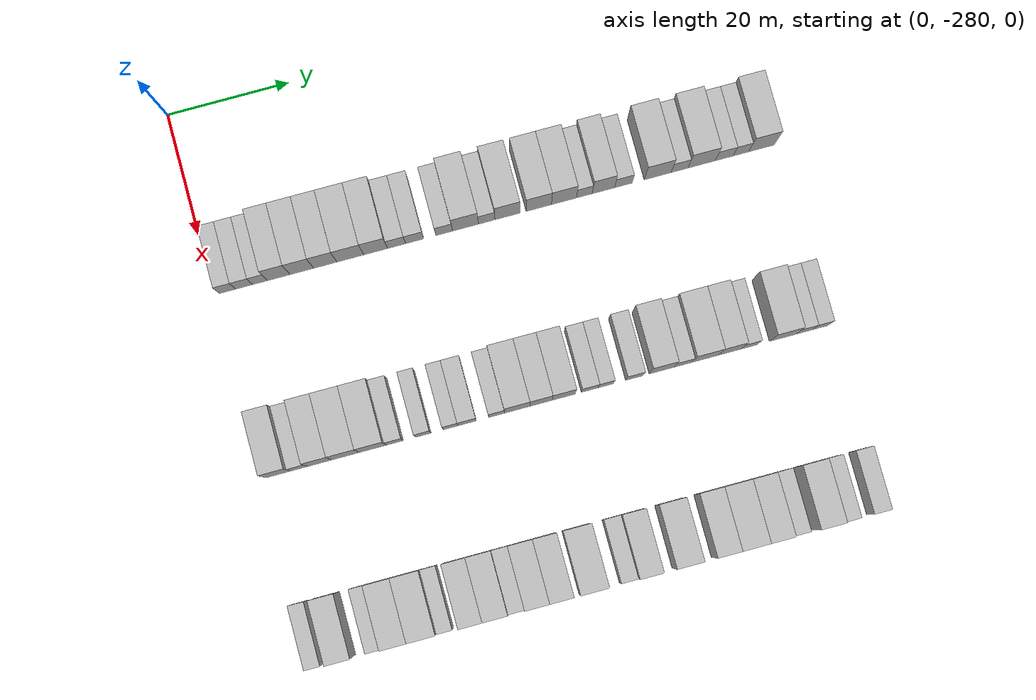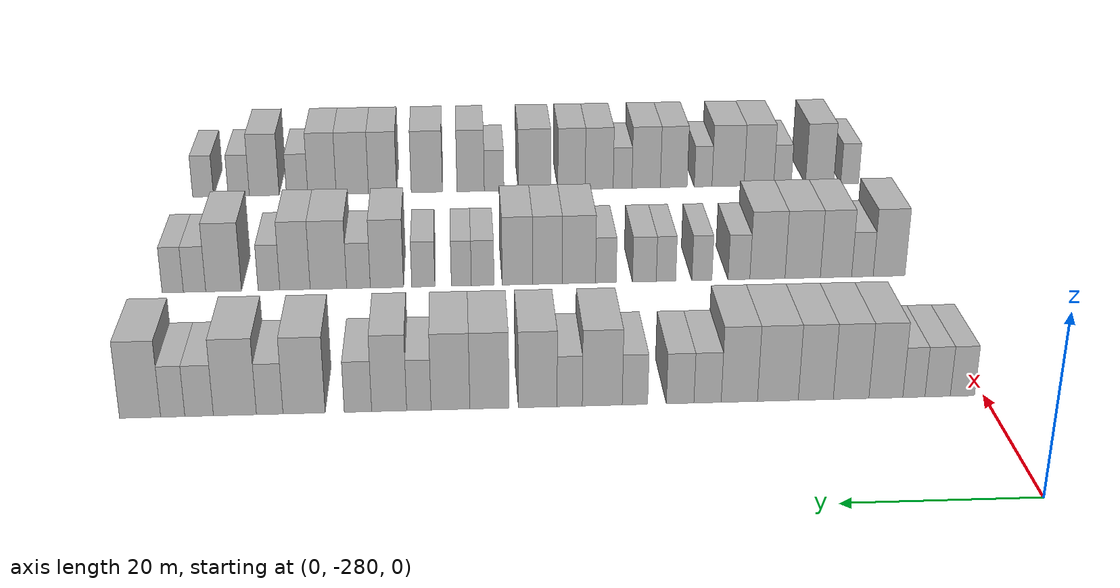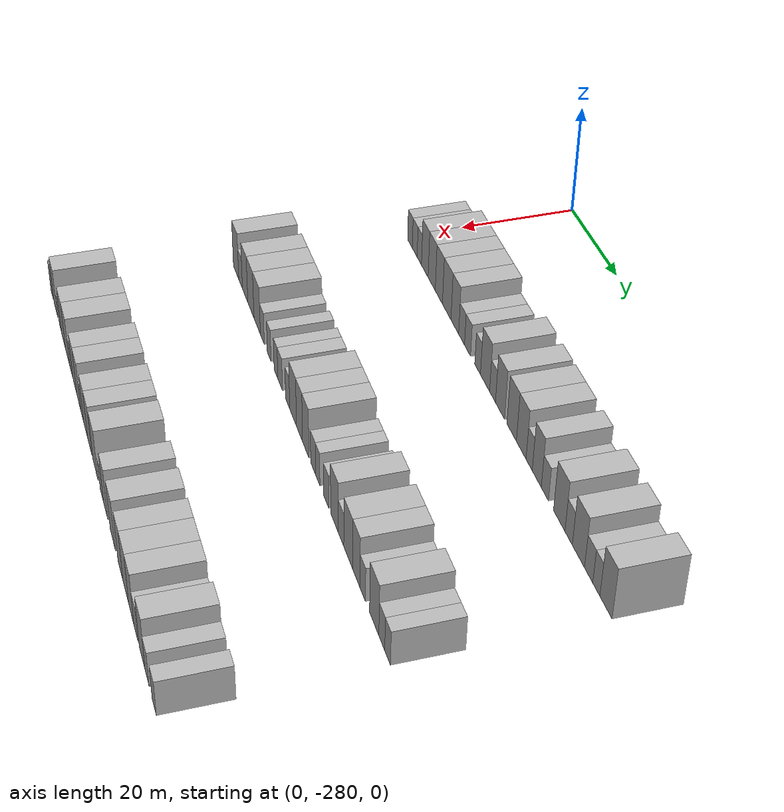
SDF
<sdf version="1.6">
 <world name="default">
  <model name="building_1">
   <static>1</static>
   <pose>25.0000 -277.6752 0 0.000000 0.000000 0.000000</pose>
   <link name="link">
    <pose>0 0 3.00 0 0 0</pose>
    <collision name="collision"><geometry><box><size>10.0000 2.6495 6.0000</size></box></geometry></collision>
    <visual name="visual">
     <cast_shadows>0</cast_shadows>
     <geometry><box><size>10.0000 2.6495 6.0000</size></box></geometry>
     <material>
      <script>
       <uri>model://HANNAS_wall/materials/scripts</uri>
       <uri>model://HANNAS_wall/materials/textures</uri>
       <name>vrc/HANNAS_wall</name>
      </script>
     </material>
    </visual>
   </link>
  </model>
  <model name="building_2">
   <static>1</static>
   <pose>25.0000 -274.9795 0 0.000000 0.000000 0.000000</pose>
   <link name="link">
    <pose>0 0 3.00 0 0 0</pose>
    <collision name="collision"><geometry><box><size>10.0000 2.7420 6.0000</size></box></geometry></collision>
    <visual name="visual">
     <cast_shadows>0</cast_shadows>
     <geometry><box><size>10.0000 2.7420 6.0000</size></box></geometry>
     <material>
      <script>
       <uri>model://HANNAS_wall/materials/scripts</uri>
       <uri>model://HANNAS_wall/materials/textures</uri>
       <name>vrc/HANNAS_wall</name>
      </script>
     </material>
    </visual>
   </link>
  </model>
  <model name="building_3">
   <static>1</static>
   <pose>25.0000 -272.4048 0 0.000000 0.000000 0.000000</pose>
   <link name="link">
    <pose>0 0 3.00 0 0 0</pose>
    <collision name="collision"><geometry><box><size>10.0000 2.4073 6.0000</size></box></geometry></collision>
    <visual name="visual">
     <cast_shadows>0</cast_shadows>
     <geometry><box><size>10.0000 2.4073 6.0000</size></box></geometry>
     <material>
      <script>
       <uri>model://HANNAS_wall/materials/scripts</uri>
       <uri>model://HANNAS_wall/materials/textures</uri>
       <name>vrc/HANNAS_wall</name>
      </script>
     </material>
    </visual>
   </link>
  </model>
  <model name="building_4">
   <static>1</static>
   <pose>25.0000 -269.3642 0 0.000000 0.000000 0.000000</pose>
   <link name="link">
    <pose>0 0 4.50 0 0 0</pose>
    <collision name="collision"><geometry><box><size>10.0000 3.6740 9.0000</size></box></geometry></collision>
    <visual name="visual">
     <cast_shadows>0</cast_shadows>
     <geometry><box><size>10.0000 3.6740 9.0000</size></box></geometry>
     <material>
      <script>
       <uri>model://HANNAS_wall/materials/scripts</uri>
       <uri>model://HANNAS_wall/materials/textures</uri>
       <name>vrc/HANNAS_wall</name>
      </script>
     </material>
    </visual>
   </link>
  </model>
  <model name="building_5">
   <static>1</static>
   <pose>25.0000 -265.6011 0 0.000000 0.000000 0.000000</pose>
   <link name="link">
    <pose>0 0 4.50 0 0 0</pose>
    <collision name="collision"><geometry><box><size>10.0000 3.8522 9.0000</size></box></geometry></collision>
    <visual name="visual">
     <cast_shadows>0</cast_shadows>
     <geometry><box><size>10.0000 3.8522 9.0000</size></box></geometry>
     <material>
      <script>
       <uri>model://HANNAS_wall/materials/scripts</uri>
       <uri>model://HANNAS_wall/materials/textures</uri>
       <name>vrc/HANNAS_wall</name>
      </script>
     </material>
    </visual>
   </link>
  </model>
  <model name="building_6">
   <static>1</static>
   <pose>25.0000 -261.7852 0 0.000000 0.000000 0.000000</pose>
   <link name="link">
    <pose>0 0 4.50 0 0 0</pose>
    <collision name="collision"><geometry><box><size>10.0000 3.7798 9.0000</size></box></geometry></collision>
    <visual name="visual">
     <cast_shadows>0</cast_shadows>
     <geometry><box><size>10.0000 3.7798 9.0000</size></box></geometry>
     <material>
      <script>
       <uri>model://HANNAS_wall/materials/scripts</uri>
       <uri>model://HANNAS_wall/materials/textures</uri>
       <name>vrc/HANNAS_wall</name>
      </script>
     </material>
    </visual>
   </link>
  </model>
  <model name="building_7">
   <static>1</static>
   <pose>25.0000 -257.6972 0 0.000000 0.000000 0.000000</pose>
   <link name="link">
    <pose>0 0 4.50 0 0 0</pose>
    <collision name="collision"><geometry><box><size>10.0000 4.3960 9.0000</size></box></geometry></collision>
    <visual name="visual">
     <cast_shadows>0</cast_shadows>
     <geometry><box><size>10.0000 4.3960 9.0000</size></box></geometry>
     <material>
      <script>
       <uri>model://HANNAS_wall/materials/scripts</uri>
       <uri>model://HANNAS_wall/materials/textures</uri>
       <name>vrc/HANNAS_wall</name>
      </script>
     </material>
    </visual>
   </link>
  </model>
  <model name="building_8">
   <static>1</static>
   <pose>25.0000 -253.5503 0 0.000000 0.000000 0.000000</pose>
   <link name="link">
    <pose>0 0 4.50 0 0 0</pose>
    <collision name="collision"><geometry><box><size>10.0000 3.8979 9.0000</size></box></geometry></collision>
    <visual name="visual">
     <cast_shadows>0</cast_shadows>
     <geometry><box><size>10.0000 3.8979 9.0000</size></box></geometry>
     <material>
      <script>
       <uri>model://HANNAS_wall/materials/scripts</uri>
       <uri>model://HANNAS_wall/materials/textures</uri>
       <name>vrc/HANNAS_wall</name>
      </script>
     </material>
    </visual>
   </link>
  </model>
  <model name="building_9">
   <static>1</static>
   <pose>25.0000 -250.1390 0 0.000000 0.000000 0.000000</pose>
   <link name="link">
    <pose>0 0 3.00 0 0 0</pose>
    <collision name="collision"><geometry><box><size>10.0000 2.9247 6.0000</size></box></geometry></collision>
    <visual name="visual">
     <cast_shadows>0</cast_shadows>
     <geometry><box><size>10.0000 2.9247 6.0000</size></box></geometry>
     <material>
      <script>
       <uri>model://HANNAS_wall/materials/scripts</uri>
       <uri>model://HANNAS_wall/materials/textures</uri>
       <name>vrc/HANNAS_wall</name>
      </script>
     </material>
    </visual>
   </link>
  </model>
  <model name="building_10">
   <static>1</static>
   <pose>25.0000 -247.2018 0 0.000000 0.000000 0.000000</pose>
   <link name="link">
    <pose>0 0 3.00 0 0 0</pose>
    <collision name="collision"><geometry><box><size>10.0000 2.9497 6.0000</size></box></geometry></collision>
    <visual name="visual">
     <cast_shadows>0</cast_shadows>
     <geometry><box><size>10.0000 2.9497 6.0000</size></box></geometry>
     <material>
      <script>
       <uri>model://HANNAS_wall/materials/scripts</uri>
       <uri>model://HANNAS_wall/materials/textures</uri>
       <name>vrc/HANNAS_wall</name>
      </script>
     </material>
    </visual>
   </link>
  </model>
  <model name="building_11">
   <static>1</static>
   <pose>25.0000 -242.3681 0 0.000000 0.000000 0.000000</pose>
   <link name="link">
    <pose>0 0 3.00 0 0 0</pose>
    <collision name="collision"><geometry><box><size>10.0000 2.7177 6.0000</size></box></geometry></collision>
    <visual name="visual">
     <cast_shadows>0</cast_shadows>
     <geometry><box><size>10.0000 2.7177 6.0000</size></box></geometry>
     <material>
      <script>
       <uri>model://HANNAS_wall/materials/scripts</uri>
       <uri>model://HANNAS_wall/materials/textures</uri>
       <name>vrc/HANNAS_wall</name>
      </script>
     </material>
    </visual>
   </link>
  </model>
  <model name="building_12">
   <static>1</static>
   <pose>25.0000 -238.8807 0 0.000000 0.000000 0.000000</pose>
   <link name="link">
    <pose>0 0 4.50 0 0 0</pose>
    <collision name="collision"><geometry><box><size>10.0000 4.2572 9.0000</size></box></geometry></collision>
    <visual name="visual">
     <cast_shadows>0</cast_shadows>
     <geometry><box><size>10.0000 4.2572 9.0000</size></box></geometry>
     <material>
      <script>
       <uri>model://HANNAS_wall/materials/scripts</uri>
       <uri>model://HANNAS_wall/materials/textures</uri>
       <name>vrc/HANNAS_wall</name>
      </script>
     </material>
    </visual>
   </link>
  </model>
  <model name="building_13">
   <static>1</static>
   <pose>25.0000 -235.4139 0 0.000000 0.000000 0.000000</pose>
   <link name="link">
    <pose>0 0 3.00 0 0 0</pose>
    <collision name="collision"><geometry><box><size>10.0000 2.6763 6.0000</size></box></geometry></collision>
    <visual name="visual">
     <cast_shadows>0</cast_shadows>
     <geometry><box><size>10.0000 2.6763 6.0000</size></box></geometry>
     <material>
      <script>
       <uri>model://HANNAS_wall/materials/scripts</uri>
       <uri>model://HANNAS_wall/materials/textures</uri>
       <name>vrc/HANNAS_wall</name>
      </script>
     </material>
    </visual>
   </link>
  </model>
  <model name="building_14">
   <static>1</static>
   <pose>25.0000 -232.0247 0 0.000000 0.000000 0.000000</pose>
   <link name="link">
    <pose>0 0 4.50 0 0 0</pose>
    <collision name="collision"><geometry><box><size>10.0000 4.1022 9.0000</size></box></geometry></collision>
    <visual name="visual">
     <cast_shadows>0</cast_shadows>
     <geometry><box><size>10.0000 4.1022 9.0000</size></box></geometry>
     <material>
      <script>
       <uri>model://HANNAS_wall/materials/scripts</uri>
       <uri>model://HANNAS_wall/materials/textures</uri>
       <name>vrc/HANNAS_wall</name>
      </script>
     </material>
    </visual>
   </link>
  </model>
  <model name="building_15">
   <static>1</static>
   <pose>25.0000 -226.8983 0 0.000000 0.000000 0.000000</pose>
   <link name="link">
    <pose>0 0 4.50 0 0 0</pose>
    <collision name="collision"><geometry><box><size>10.0000 4.1507 9.0000</size></box></geometry></collision>
    <visual name="visual">
     <cast_shadows>0</cast_shadows>
     <geometry><box><size>10.0000 4.1507 9.0000</size></box></geometry>
     <material>
      <script>
       <uri>model://HANNAS_wall/materials/scripts</uri>
       <uri>model://HANNAS_wall/materials/textures</uri>
       <name>vrc/HANNAS_wall</name>
      </script>
     </material>
    </visual>
   </link>
  </model>
  <model name="building_16">
   <static>1</static>
   <pose>25.0000 -222.7742 0 0.000000 0.000000 0.000000</pose>
   <link name="link">
    <pose>0 0 4.50 0 0 0</pose>
    <collision name="collision"><geometry><box><size>10.0000 4.0976 9.0000</size></box></geometry></collision>
    <visual name="visual">
     <cast_shadows>0</cast_shadows>
     <geometry><box><size>10.0000 4.0976 9.0000</size></box></geometry>
     <material>
      <script>
       <uri>model://HANNAS_wall/materials/scripts</uri>
       <uri>model://HANNAS_wall/materials/textures</uri>
       <name>vrc/HANNAS_wall</name>
      </script>
     </material>
    </visual>
   </link>
  </model>
  <model name="building_17">
   <static>1</static>
   <pose>25.0000 -219.4389 0 0.000000 0.000000 0.000000</pose>
   <link name="link">
    <pose>0 0 3.00 0 0 0</pose>
    <collision name="collision"><geometry><box><size>10.0000 2.5729 6.0000</size></box></geometry></collision>
    <visual name="visual">
     <cast_shadows>0</cast_shadows>
     <geometry><box><size>10.0000 2.5729 6.0000</size></box></geometry>
     <material>
      <script>
       <uri>model://HANNAS_wall/materials/scripts</uri>
       <uri>model://HANNAS_wall/materials/textures</uri>
       <name>vrc/HANNAS_wall</name>
      </script>
     </material>
    </visual>
   </link>
  </model>
  <model name="building_18">
   <static>1</static>
   <pose>25.0000 -216.3109 0 0.000000 0.000000 0.000000</pose>
   <link name="link">
    <pose>0 0 4.50 0 0 0</pose>
    <collision name="collision"><geometry><box><size>10.0000 3.6831 9.0000</size></box></geometry></collision>
    <visual name="visual">
     <cast_shadows>0</cast_shadows>
     <geometry><box><size>10.0000 3.6831 9.0000</size></box></geometry>
     <material>
      <script>
       <uri>model://HANNAS_wall/materials/scripts</uri>
       <uri>model://HANNAS_wall/materials/textures</uri>
       <name>vrc/HANNAS_wall</name>
      </script>
     </material>
    </visual>
   </link>
  </model>
  <model name="building_19">
   <static>1</static>
   <pose>25.0000 -213.0263 0 0.000000 0.000000 0.000000</pose>
   <link name="link">
    <pose>0 0 3.00 0 0 0</pose>
    <collision name="collision"><geometry><box><size>10.0000 2.8860 6.0000</size></box></geometry></collision>
    <visual name="visual">
     <cast_shadows>0</cast_shadows>
     <geometry><box><size>10.0000 2.8860 6.0000</size></box></geometry>
     <material>
      <script>
       <uri>model://HANNAS_wall/materials/scripts</uri>
       <uri>model://HANNAS_wall/materials/textures</uri>
       <name>vrc/HANNAS_wall</name>
      </script>
     </material>
    </visual>
   </link>
  </model>
  <model name="building_20">
   <static>1</static>
   <pose>25.0000 -207.3724 0 0.000000 0.000000 0.000000</pose>
   <link name="link">
    <pose>0 0 4.50 0 0 0</pose>
    <collision name="collision"><geometry><box><size>10.0000 4.4217 9.0000</size></box></geometry></collision>
    <visual name="visual">
     <cast_shadows>0</cast_shadows>
     <geometry><box><size>10.0000 4.4217 9.0000</size></box></geometry>
     <material>
      <script>
       <uri>model://HANNAS_wall/materials/scripts</uri>
       <uri>model://HANNAS_wall/materials/textures</uri>
       <name>vrc/HANNAS_wall</name>
      </script>
     </material>
    </visual>
   </link>
  </model>
  <model name="building_21">
   <static>1</static>
   <pose>25.0000 -203.7728 0 0.000000 0.000000 0.000000</pose>
   <link name="link">
    <pose>0 0 3.00 0 0 0</pose>
    <collision name="collision"><geometry><box><size>10.0000 2.7775 6.0000</size></box></geometry></collision>
    <visual name="visual">
     <cast_shadows>0</cast_shadows>
     <geometry><box><size>10.0000 2.7775 6.0000</size></box></geometry>
     <material>
      <script>
       <uri>model://HANNAS_wall/materials/scripts</uri>
       <uri>model://HANNAS_wall/materials/textures</uri>
       <name>vrc/HANNAS_wall</name>
      </script>
     </material>
    </visual>
   </link>
  </model>
  <model name="building_22">
   <static>1</static>
   <pose>25.0000 -200.1363 0 0.000000 0.000000 0.000000</pose>
   <link name="link">
    <pose>0 0 4.50 0 0 0</pose>
    <collision name="collision"><geometry><box><size>10.0000 4.4956 9.0000</size></box></geometry></collision>
    <visual name="visual">
     <cast_shadows>0</cast_shadows>
     <geometry><box><size>10.0000 4.4956 9.0000</size></box></geometry>
     <material>
      <script>
       <uri>model://HANNAS_wall/materials/scripts</uri>
       <uri>model://HANNAS_wall/materials/textures</uri>
       <name>vrc/HANNAS_wall</name>
      </script>
     </material>
    </visual>
   </link>
  </model>
  <model name="building_23">
   <static>1</static>
   <pose>25.0000 -196.4032 0 0.000000 0.000000 0.000000</pose>
   <link name="link">
    <pose>0 0 3.00 0 0 0</pose>
    <collision name="collision"><geometry><box><size>10.0000 2.9708 6.0000</size></box></geometry></collision>
    <visual name="visual">
     <cast_shadows>0</cast_shadows>
     <geometry><box><size>10.0000 2.9708 6.0000</size></box></geometry>
     <material>
      <script>
       <uri>model://HANNAS_wall/materials/scripts</uri>
       <uri>model://HANNAS_wall/materials/textures</uri>
       <name>vrc/HANNAS_wall</name>
      </script>
     </material>
    </visual>
   </link>
  </model>
  <model name="building_24">
   <static>1</static>
   <pose>25.0000 -193.6573 0 0.000000 0.000000 0.000000</pose>
   <link name="link">
    <pose>0 0 3.00 0 0 0</pose>
    <collision name="collision"><geometry><box><size>10.0000 2.5210 6.0000</size></box></geometry></collision>
    <visual name="visual">
     <cast_shadows>0</cast_shadows>
     <geometry><box><size>10.0000 2.5210 6.0000</size></box></geometry>
     <material>
      <script>
       <uri>model://HANNAS_wall/materials/scripts</uri>
       <uri>model://HANNAS_wall/materials/textures</uri>
       <name>vrc/HANNAS_wall</name>
      </script>
     </material>
    </visual>
   </link>
  </model>
  <model name="building_25">
   <static>1</static>
   <pose>25.0000 -190.2645 0 0.000000 0.000000 0.000000</pose>
   <link name="link">
    <pose>0 0 4.50 0 0 0</pose>
    <collision name="collision"><geometry><box><size>10.0000 4.2645 9.0000</size></box></geometry></collision>
    <visual name="visual">
     <cast_shadows>0</cast_shadows>
     <geometry><box><size>10.0000 4.2645 9.0000</size></box></geometry>
     <material>
      <script>
       <uri>model://HANNAS_wall/materials/scripts</uri>
       <uri>model://HANNAS_wall/materials/textures</uri>
       <name>vrc/HANNAS_wall</name>
      </script>
     </material>
    </visual>
   </link>
  </model>
  <model name="building_143">
   <static>1</static>
   <pose>55.0000 -277.0145 0 0.000000 0.000000 0.000000</pose>
   <link name="link">
    <pose>0 0 4.50 0 0 0</pose>
    <collision name="collision"><geometry><box><size>10.0000 3.9711 9.0000</size></box></geometry></collision>
    <visual name="visual">
     <cast_shadows>0</cast_shadows>
     <geometry><box><size>10.0000 3.9711 9.0000</size></box></geometry>
     <material>
      <script>
       <uri>model://HANNAS_wall/materials/scripts</uri>
       <uri>model://HANNAS_wall/materials/textures</uri>
       <name>vrc/HANNAS_wall</name>
      </script>
     </material>
    </visual>
   </link>
  </model>
  <model name="building_144">
   <static>1</static>
   <pose>55.0000 -273.6829 0 0.000000 0.000000 0.000000</pose>
   <link name="link">
    <pose>0 0 3.00 0 0 0</pose>
    <collision name="collision"><geometry><box><size>10.0000 2.6921 6.0000</size></box></geometry></collision>
    <visual name="visual">
     <cast_shadows>0</cast_shadows>
     <geometry><box><size>10.0000 2.6921 6.0000</size></box></geometry>
     <material>
      <script>
       <uri>model://HANNAS_wall/materials/scripts</uri>
       <uri>model://HANNAS_wall/materials/textures</uri>
       <name>vrc/HANNAS_wall</name>
      </script>
     </material>
    </visual>
   </link>
  </model>
  <model name="building_145">
   <static>1</static>
   <pose>55.0000 -270.3876 0 0.000000 0.000000 0.000000</pose>
   <link name="link">
    <pose>0 0 4.50 0 0 0</pose>
    <collision name="collision"><geometry><box><size>10.0000 3.8984 9.0000</size></box></geometry></collision>
    <visual name="visual">
     <cast_shadows>0</cast_shadows>
     <geometry><box><size>10.0000 3.8984 9.0000</size></box></geometry>
     <material>
      <script>
       <uri>model://HANNAS_wall/materials/scripts</uri>
       <uri>model://HANNAS_wall/materials/textures</uri>
       <name>vrc/HANNAS_wall</name>
      </script>
     </material>
    </visual>
   </link>
  </model>
  <model name="building_146">
   <static>1</static>
   <pose>55.0000 -266.2411 0 0.000000 0.000000 0.000000</pose>
   <link name="link">
    <pose>0 0 4.50 0 0 0</pose>
    <collision name="collision"><geometry><box><size>10.0000 4.3944 9.0000</size></box></geometry></collision>
    <visual name="visual">
     <cast_shadows>0</cast_shadows>
     <geometry><box><size>10.0000 4.3944 9.0000</size></box></geometry>
     <material>
      <script>
       <uri>model://HANNAS_wall/materials/scripts</uri>
       <uri>model://HANNAS_wall/materials/textures</uri>
       <name>vrc/HANNAS_wall</name>
      </script>
     </material>
    </visual>
   </link>
  </model>
  <model name="building_147">
   <static>1</static>
   <pose>55.0000 -261.8593 0 0.000000 0.000000 0.000000</pose>
   <link name="link">
    <pose>0 0 4.50 0 0 0</pose>
    <collision name="collision"><geometry><box><size>10.0000 4.3693 9.0000</size></box></geometry></collision>
    <visual name="visual">
     <cast_shadows>0</cast_shadows>
     <geometry><box><size>10.0000 4.3693 9.0000</size></box></geometry>
     <material>
      <script>
       <uri>model://HANNAS_wall/materials/scripts</uri>
       <uri>model://HANNAS_wall/materials/textures</uri>
       <name>vrc/HANNAS_wall</name>
      </script>
     </material>
    </visual>
   </link>
  </model>
  <model name="building_148">
   <static>1</static>
   <pose>55.0000 -258.3265 0 0.000000 0.000000 0.000000</pose>
   <link name="link">
    <pose>0 0 3.00 0 0 0</pose>
    <collision name="collision"><geometry><box><size>10.0000 2.6963 6.0000</size></box></geometry></collision>
    <visual name="visual">
     <cast_shadows>0</cast_shadows>
     <geometry><box><size>10.0000 2.6963 6.0000</size></box></geometry>
     <material>
      <script>
       <uri>model://HANNAS_wall/materials/scripts</uri>
       <uri>model://HANNAS_wall/materials/textures</uri>
       <name>vrc/HANNAS_wall</name>
      </script>
     </material>
    </visual>
   </link>
  </model>
  <model name="building_149">
   <static>1</static>
   <pose>55.0000 -253.7390 0 0.000000 0.000000 0.000000</pose>
   <link name="link">
    <pose>0 0 3.00 0 0 0</pose>
    <collision name="collision"><geometry><box><size>10.0000 2.4786 6.0000</size></box></geometry></collision>
    <visual name="visual">
     <cast_shadows>0</cast_shadows>
     <geometry><box><size>10.0000 2.4786 6.0000</size></box></geometry>
     <material>
      <script>
       <uri>model://HANNAS_wall/materials/scripts</uri>
       <uri>model://HANNAS_wall/materials/textures</uri>
       <name>vrc/HANNAS_wall</name>
      </script>
     </material>
    </visual>
   </link>
  </model>
  <model name="building_150">
   <static>1</static>
   <pose>55.0000 -249.2992 0 0.000000 0.000000 0.000000</pose>
   <link name="link">
    <pose>0 0 3.00 0 0 0</pose>
    <collision name="collision"><geometry><box><size>10.0000 2.4010 6.0000</size></box></geometry></collision>
    <visual name="visual">
     <cast_shadows>0</cast_shadows>
     <geometry><box><size>10.0000 2.4010 6.0000</size></box></geometry>
     <material>
      <script>
       <uri>model://HANNAS_wall/materials/scripts</uri>
       <uri>model://HANNAS_wall/materials/textures</uri>
       <name>vrc/HANNAS_wall</name>
      </script>
     </material>
    </visual>
   </link>
  </model>
  <model name="building_151">
   <static>1</static>
   <pose>55.0000 -246.6325 0 0.000000 0.000000 0.000000</pose>
   <link name="link">
    <pose>0 0 3.00 0 0 0</pose>
    <collision name="collision"><geometry><box><size>10.0000 2.9324 6.0000</size></box></geometry></collision>
    <visual name="visual">
     <cast_shadows>0</cast_shadows>
     <geometry><box><size>10.0000 2.9324 6.0000</size></box></geometry>
     <material>
      <script>
       <uri>model://HANNAS_wall/materials/scripts</uri>
       <uri>model://HANNAS_wall/materials/textures</uri>
       <name>vrc/HANNAS_wall</name>
      </script>
     </material>
    </visual>
   </link>
  </model>
  <model name="building_152">
   <static>1</static>
   <pose>55.0000 -241.8961 0 0.000000 0.000000 0.000000</pose>
   <link name="link">
    <pose>0 0 3.00 0 0 0</pose>
    <collision name="collision"><geometry><box><size>10.0000 2.5404 6.0000</size></box></geometry></collision>
    <visual name="visual">
     <cast_shadows>0</cast_shadows>
     <geometry><box><size>10.0000 2.5404 6.0000</size></box></geometry>
     <material>
      <script>
       <uri>model://HANNAS_wall/materials/scripts</uri>
       <uri>model://HANNAS_wall/materials/textures</uri>
       <name>vrc/HANNAS_wall</name>
      </script>
     </material>
    </visual>
   </link>
  </model>
  <model name="building_153">
   <static>1</static>
   <pose>55.0000 -238.5752 0 0.000000 0.000000 0.000000</pose>
   <link name="link">
    <pose>0 0 4.50 0 0 0</pose>
    <collision name="collision"><geometry><box><size>10.0000 4.1012 9.0000</size></box></geometry></collision>
    <visual name="visual">
     <cast_shadows>0</cast_shadows>
     <geometry><box><size>10.0000 4.1012 9.0000</size></box></geometry>
     <material>
      <script>
       <uri>model://HANNAS_wall/materials/scripts</uri>
       <uri>model://HANNAS_wall/materials/textures</uri>
       <name>vrc/HANNAS_wall</name>
      </script>
     </material>
    </visual>
   </link>
  </model>
  <model name="building_154">
   <static>1</static>
   <pose>55.0000 -234.7156 0 0.000000 0.000000 0.000000</pose>
   <link name="link">
    <pose>0 0 4.50 0 0 0</pose>
    <collision name="collision"><geometry><box><size>10.0000 3.6181 9.0000</size></box></geometry></collision>
    <visual name="visual">
     <cast_shadows>0</cast_shadows>
     <geometry><box><size>10.0000 3.6181 9.0000</size></box></geometry>
     <material>
      <script>
       <uri>model://HANNAS_wall/materials/scripts</uri>
       <uri>model://HANNAS_wall/materials/textures</uri>
       <name>vrc/HANNAS_wall</name>
      </script>
     </material>
    </visual>
   </link>
  </model>
  <model name="building_155">
   <static>1</static>
   <pose>55.0000 -231.0455 0 0.000000 0.000000 0.000000</pose>
   <link name="link">
    <pose>0 0 4.50 0 0 0</pose>
    <collision name="collision"><geometry><box><size>10.0000 3.7221 9.0000</size></box></geometry></collision>
    <visual name="visual">
     <cast_shadows>0</cast_shadows>
     <geometry><box><size>10.0000 3.7221 9.0000</size></box></geometry>
     <material>
      <script>
       <uri>model://HANNAS_wall/materials/scripts</uri>
       <uri>model://HANNAS_wall/materials/textures</uri>
       <name>vrc/HANNAS_wall</name>
      </script>
     </material>
    </visual>
   </link>
  </model>
  <model name="building_156">
   <static>1</static>
   <pose>55.0000 -226.8008 0 0.000000 0.000000 0.000000</pose>
   <link name="link">
    <pose>0 0 3.00 0 0 0</pose>
    <collision name="collision"><geometry><box><size>10.0000 2.7672 6.0000</size></box></geometry></collision>
    <visual name="visual">
     <cast_shadows>0</cast_shadows>
     <geometry><box><size>10.0000 2.7672 6.0000</size></box></geometry>
     <material>
      <script>
       <uri>model://HANNAS_wall/materials/scripts</uri>
       <uri>model://HANNAS_wall/materials/textures</uri>
       <name>vrc/HANNAS_wall</name>
      </script>
     </material>
    </visual>
   </link>
  </model>
  <model name="building_157">
   <static>1</static>
   <pose>55.0000 -224.1991 0 0.000000 0.000000 0.000000</pose>
   <link name="link">
    <pose>0 0 3.00 0 0 0</pose>
    <collision name="collision"><geometry><box><size>10.0000 2.4362 6.0000</size></box></geometry></collision>
    <visual name="visual">
     <cast_shadows>0</cast_shadows>
     <geometry><box><size>10.0000 2.4362 6.0000</size></box></geometry>
     <material>
      <script>
       <uri>model://HANNAS_wall/materials/scripts</uri>
       <uri>model://HANNAS_wall/materials/textures</uri>
       <name>vrc/HANNAS_wall</name>
      </script>
     </material>
    </visual>
   </link>
  </model>
  <model name="building_158">
   <static>1</static>
   <pose>55.0000 -219.5702 0 0.000000 0.000000 0.000000</pose>
   <link name="link">
    <pose>0 0 3.00 0 0 0</pose>
    <collision name="collision"><geometry><box><size>10.0000 2.8216 6.0000</size></box></geometry></collision>
    <visual name="visual">
     <cast_shadows>0</cast_shadows>
     <geometry><box><size>10.0000 2.8216 6.0000</size></box></geometry>
     <material>
      <script>
       <uri>model://HANNAS_wall/materials/scripts</uri>
       <uri>model://HANNAS_wall/materials/textures</uri>
       <name>vrc/HANNAS_wall</name>
      </script>
     </material>
    </visual>
   </link>
  </model>
  <model name="building_159">
   <static>1</static>
   <pose>55.0000 -215.1419 0 0.000000 0.000000 0.000000</pose>
   <link name="link">
    <pose>0 0 4.50 0 0 0</pose>
    <collision name="collision"><geometry><box><size>10.0000 4.0351 9.0000</size></box></geometry></collision>
    <visual name="visual">
     <cast_shadows>0</cast_shadows>
     <geometry><box><size>10.0000 4.0351 9.0000</size></box></geometry>
     <material>
      <script>
       <uri>model://HANNAS_wall/materials/scripts</uri>
       <uri>model://HANNAS_wall/materials/textures</uri>
       <name>vrc/HANNAS_wall</name>
      </script>
     </material>
    </visual>
   </link>
  </model>
  <model name="building_160">
   <static>1</static>
   <pose>55.0000 -211.6876 0 0.000000 0.000000 0.000000</pose>
   <link name="link">
    <pose>0 0 3.00 0 0 0</pose>
    <collision name="collision"><geometry><box><size>10.0000 2.8734 6.0000</size></box></geometry></collision>
    <visual name="visual">
     <cast_shadows>0</cast_shadows>
     <geometry><box><size>10.0000 2.8734 6.0000</size></box></geometry>
     <material>
      <script>
       <uri>model://HANNAS_wall/materials/scripts</uri>
       <uri>model://HANNAS_wall/materials/textures</uri>
       <name>vrc/HANNAS_wall</name>
      </script>
     </material>
    </visual>
   </link>
  </model>
  <model name="building_161">
   <static>1</static>
   <pose>55.0000 -208.0436 0 0.000000 0.000000 0.000000</pose>
   <link name="link">
    <pose>0 0 4.50 0 0 0</pose>
    <collision name="collision"><geometry><box><size>10.0000 4.4147 9.0000</size></box></geometry></collision>
    <visual name="visual">
     <cast_shadows>0</cast_shadows>
     <geometry><box><size>10.0000 4.4147 9.0000</size></box></geometry>
     <material>
      <script>
       <uri>model://HANNAS_wall/materials/scripts</uri>
       <uri>model://HANNAS_wall/materials/textures</uri>
       <name>vrc/HANNAS_wall</name>
      </script>
     </material>
    </visual>
   </link>
  </model>
  <model name="building_162">
   <static>1</static>
   <pose>55.0000 -204.0038 0 0.000000 0.000000 0.000000</pose>
   <link name="link">
    <pose>0 0 4.50 0 0 0</pose>
    <collision name="collision"><geometry><box><size>10.0000 3.6650 9.0000</size></box></geometry></collision>
    <visual name="visual">
     <cast_shadows>0</cast_shadows>
     <geometry><box><size>10.0000 3.6650 9.0000</size></box></geometry>
     <material>
      <script>
       <uri>model://HANNAS_wall/materials/scripts</uri>
       <uri>model://HANNAS_wall/materials/textures</uri>
       <name>vrc/HANNAS_wall</name>
      </script>
     </material>
    </visual>
   </link>
  </model>
  <model name="building_163">
   <static>1</static>
   <pose>55.0000 -200.8587 0 0.000000 0.000000 0.000000</pose>
   <link name="link">
    <pose>0 0 3.00 0 0 0</pose>
    <collision name="collision"><geometry><box><size>10.0000 2.6252 6.0000</size></box></geometry></collision>
    <visual name="visual">
     <cast_shadows>0</cast_shadows>
     <geometry><box><size>10.0000 2.6252 6.0000</size></box></geometry>
     <material>
      <script>
       <uri>model://HANNAS_wall/materials/scripts</uri>
       <uri>model://HANNAS_wall/materials/textures</uri>
       <name>vrc/HANNAS_wall</name>
      </script>
     </material>
    </visual>
   </link>
  </model>
  <model name="building_164">
   <static>1</static>
   <pose>55.0000 -195.3943 0 0.000000 0.000000 0.000000</pose>
   <link name="link">
    <pose>0 0 4.50 0 0 0</pose>
    <collision name="collision"><geometry><box><size>10.0000 4.3035 9.0000</size></box></geometry></collision>
    <visual name="visual">
     <cast_shadows>0</cast_shadows>
     <geometry><box><size>10.0000 4.3035 9.0000</size></box></geometry>
     <material>
      <script>
       <uri>model://HANNAS_wall/materials/scripts</uri>
       <uri>model://HANNAS_wall/materials/textures</uri>
       <name>vrc/HANNAS_wall</name>
      </script>
     </material>
    </visual>
   </link>
  </model>
  <model name="building_165">
   <static>1</static>
   <pose>55.0000 -191.8955 0 0.000000 0.000000 0.000000</pose>
   <link name="link">
    <pose>0 0 3.00 0 0 0</pose>
    <collision name="collision"><geometry><box><size>10.0000 2.6940 6.0000</size></box></geometry></collision>
    <visual name="visual">
     <cast_shadows>0</cast_shadows>
     <geometry><box><size>10.0000 2.6940 6.0000</size></box></geometry>
     <material>
      <script>
       <uri>model://HANNAS_wall/materials/scripts</uri>
       <uri>model://HANNAS_wall/materials/textures</uri>
       <name>vrc/HANNAS_wall</name>
      </script>
     </material>
    </visual>
   </link>
  </model>
  <model name="building_166">
   <static>1</static>
   <pose>55.0000 -189.2742 0 0.000000 0.000000 0.000000</pose>
   <link name="link">
    <pose>0 0 3.00 0 0 0</pose>
    <collision name="collision"><geometry><box><size>10.0000 2.5487 6.0000</size></box></geometry></collision>
    <visual name="visual">
     <cast_shadows>0</cast_shadows>
     <geometry><box><size>10.0000 2.5487 6.0000</size></box></geometry>
     <material>
      <script>
       <uri>model://HANNAS_wall/materials/scripts</uri>
       <uri>model://HANNAS_wall/materials/textures</uri>
       <name>vrc/HANNAS_wall</name>
      </script>
     </material>
    </visual>
   </link>
  </model>
  <model name="building_291">
   <static>1</static>
   <pose>85.0000 -278.7396 0 0.000000 0.000000 0.000000</pose>
   <link name="link">
    <pose>0 0 3.00 0 0 0</pose>
    <collision name="collision"><geometry><box><size>10.0000 2.5207 6.0000</size></box></geometry></collision>
    <visual name="visual">
     <cast_shadows>0</cast_shadows>
     <geometry><box><size>10.0000 2.5207 6.0000</size></box></geometry>
     <material>
      <script>
       <uri>model://HANNAS_wall/materials/scripts</uri>
       <uri>model://HANNAS_wall/materials/textures</uri>
       <name>vrc/HANNAS_wall</name>
      </script>
     </material>
    </visual>
   </link>
  </model>
  <model name="building_292">
   <static>1</static>
   <pose>85.0000 -274.4871 0 0.000000 0.000000 0.000000</pose>
   <link name="link">
    <pose>0 0 4.50 0 0 0</pose>
    <collision name="collision"><geometry><box><size>10.0000 3.9844 9.0000</size></box></geometry></collision>
    <visual name="visual">
     <cast_shadows>0</cast_shadows>
     <geometry><box><size>10.0000 3.9844 9.0000</size></box></geometry>
     <material>
      <script>
       <uri>model://HANNAS_wall/materials/scripts</uri>
       <uri>model://HANNAS_wall/materials/textures</uri>
       <name>vrc/HANNAS_wall</name>
      </script>
     </material>
    </visual>
   </link>
  </model>
  <model name="building_293">
   <static>1</static>
   <pose>85.0000 -269.2648 0 0.000000 0.000000 0.000000</pose>
   <link name="link">
    <pose>0 0 3.00 0 0 0</pose>
    <collision name="collision"><geometry><box><size>10.0000 2.4602 6.0000</size></box></geometry></collision>
    <visual name="visual">
     <cast_shadows>0</cast_shadows>
     <geometry><box><size>10.0000 2.4602 6.0000</size></box></geometry>
     <material>
      <script>
       <uri>model://HANNAS_wall/materials/scripts</uri>
       <uri>model://HANNAS_wall/materials/textures</uri>
       <name>vrc/HANNAS_wall</name>
      </script>
     </material>
    </visual>
   </link>
  </model>
  <model name="building_294">
   <static>1</static>
   <pose>85.0000 -265.9424 0 0.000000 0.000000 0.000000</pose>
   <link name="link">
    <pose>0 0 4.50 0 0 0</pose>
    <collision name="collision"><geometry><box><size>10.0000 4.1847 9.0000</size></box></geometry></collision>
    <visual name="visual">
     <cast_shadows>0</cast_shadows>
     <geometry><box><size>10.0000 4.1847 9.0000</size></box></geometry>
     <material>
      <script>
       <uri>model://HANNAS_wall/materials/scripts</uri>
       <uri>model://HANNAS_wall/materials/textures</uri>
       <name>vrc/HANNAS_wall</name>
      </script>
     </material>
    </visual>
   </link>
  </model>
  <model name="building_295">
   <static>1</static>
   <pose>85.0000 -261.6013 0 0.000000 0.000000 0.000000</pose>
   <link name="link">
    <pose>0 0 4.50 0 0 0</pose>
    <collision name="collision"><geometry><box><size>10.0000 4.4973 9.0000</size></box></geometry></collision>
    <visual name="visual">
     <cast_shadows>0</cast_shadows>
     <geometry><box><size>10.0000 4.4973 9.0000</size></box></geometry>
     <material>
      <script>
       <uri>model://HANNAS_wall/materials/scripts</uri>
       <uri>model://HANNAS_wall/materials/textures</uri>
       <name>vrc/HANNAS_wall</name>
      </script>
     </material>
    </visual>
   </link>
  </model>
  <model name="building_296">
   <static>1</static>
   <pose>85.0000 -258.1131 0 0.000000 0.000000 0.000000</pose>
   <link name="link">
    <pose>0 0 3.00 0 0 0</pose>
    <collision name="collision"><geometry><box><size>10.0000 2.4791 6.0000</size></box></geometry></collision>
    <visual name="visual">
     <cast_shadows>0</cast_shadows>
     <geometry><box><size>10.0000 2.4791 6.0000</size></box></geometry>
     <material>
      <script>
       <uri>model://HANNAS_wall/materials/scripts</uri>
       <uri>model://HANNAS_wall/materials/textures</uri>
       <name>vrc/HANNAS_wall</name>
      </script>
     </material>
    </visual>
   </link>
  </model>
  <model name="building_297">
   <static>1</static>
   <pose>85.0000 -253.9997 0 0.000000 0.000000 0.000000</pose>
   <link name="link">
    <pose>0 0 4.50 0 0 0</pose>
    <collision name="collision"><geometry><box><size>10.0000 3.7478 9.0000</size></box></geometry></collision>
    <visual name="visual">
     <cast_shadows>0</cast_shadows>
     <geometry><box><size>10.0000 3.7478 9.0000</size></box></geometry>
     <material>
      <script>
       <uri>model://HANNAS_wall/materials/scripts</uri>
       <uri>model://HANNAS_wall/materials/textures</uri>
       <name>vrc/HANNAS_wall</name>
      </script>
     </material>
    </visual>
   </link>
  </model>
  <model name="building_298">
   <static>1</static>
   <pose>85.0000 -250.1388 0 0.000000 0.000000 0.000000</pose>
   <link name="link">
    <pose>0 0 4.50 0 0 0</pose>
    <collision name="collision"><geometry><box><size>10.0000 3.9739 9.0000</size></box></geometry></collision>
    <visual name="visual">
     <cast_shadows>0</cast_shadows>
     <geometry><box><size>10.0000 3.9739 9.0000</size></box></geometry>
     <material>
      <script>
       <uri>model://HANNAS_wall/materials/scripts</uri>
       <uri>model://HANNAS_wall/materials/textures</uri>
       <name>vrc/HANNAS_wall</name>
      </script>
     </material>
    </visual>
   </link>
  </model>
  <model name="building_299">
   <static>1</static>
   <pose>85.0000 -246.8468 0 0.000000 0.000000 0.000000</pose>
   <link name="link">
    <pose>0 0 3.00 0 0 0</pose>
    <collision name="collision"><geometry><box><size>10.0000 2.6100 6.0000</size></box></geometry></collision>
    <visual name="visual">
     <cast_shadows>0</cast_shadows>
     <geometry><box><size>10.0000 2.6100 6.0000</size></box></geometry>
     <material>
      <script>
       <uri>model://HANNAS_wall/materials/scripts</uri>
       <uri>model://HANNAS_wall/materials/textures</uri>
       <name>vrc/HANNAS_wall</name>
      </script>
     </material>
    </visual>
   </link>
  </model>
  <model name="building_300">
   <static>1</static>
   <pose>85.0000 -243.5934 0 0.000000 0.000000 0.000000</pose>
   <link name="link">
    <pose>0 0 4.50 0 0 0</pose>
    <collision name="collision"><geometry><box><size>10.0000 3.8969 9.0000</size></box></geometry></collision>
    <visual name="visual">
     <cast_shadows>0</cast_shadows>
     <geometry><box><size>10.0000 3.8969 9.0000</size></box></geometry>
     <material>
      <script>
       <uri>model://HANNAS_wall/materials/scripts</uri>
       <uri>model://HANNAS_wall/materials/textures</uri>
       <name>vrc/HANNAS_wall</name>
      </script>
     </material>
    </visual>
   </link>
  </model>
  <model name="building_301">
   <static>1</static>
   <pose>85.0000 -239.7425 0 0.000000 0.000000 0.000000</pose>
   <link name="link">
    <pose>0 0 4.50 0 0 0</pose>
    <collision name="collision"><geometry><box><size>10.0000 3.8049 9.0000</size></box></geometry></collision>
    <visual name="visual">
     <cast_shadows>0</cast_shadows>
     <geometry><box><size>10.0000 3.8049 9.0000</size></box></geometry>
     <material>
      <script>
       <uri>model://HANNAS_wall/materials/scripts</uri>
       <uri>model://HANNAS_wall/materials/textures</uri>
       <name>vrc/HANNAS_wall</name>
      </script>
     </material>
    </visual>
   </link>
  </model>
  <model name="building_302">
   <static>1</static>
   <pose>85.0000 -234.5978 0 0.000000 0.000000 0.000000</pose>
   <link name="link">
    <pose>0 0 4.50 0 0 0</pose>
    <collision name="collision"><geometry><box><size>10.0000 4.4844 9.0000</size></box></geometry></collision>
    <visual name="visual">
     <cast_shadows>0</cast_shadows>
     <geometry><box><size>10.0000 4.4844 9.0000</size></box></geometry>
     <material>
      <script>
       <uri>model://HANNAS_wall/materials/scripts</uri>
       <uri>model://HANNAS_wall/materials/textures</uri>
       <name>vrc/HANNAS_wall</name>
      </script>
     </material>
    </visual>
   </link>
  </model>
  <model name="building_303">
   <static>1</static>
   <pose>85.0000 -228.9961 0 0.000000 0.000000 0.000000</pose>
   <link name="link">
    <pose>0 0 3.00 0 0 0</pose>
    <collision name="collision"><geometry><box><size>10.0000 2.7191 6.0000</size></box></geometry></collision>
    <visual name="visual">
     <cast_shadows>0</cast_shadows>
     <geometry><box><size>10.0000 2.7191 6.0000</size></box></geometry>
     <material>
      <script>
       <uri>model://HANNAS_wall/materials/scripts</uri>
       <uri>model://HANNAS_wall/materials/textures</uri>
       <name>vrc/HANNAS_wall</name>
      </script>
     </material>
    </visual>
   </link>
  </model>
  <model name="building_304">
   <static>1</static>
   <pose>85.0000 -225.7511 0 0.000000 0.000000 0.000000</pose>
   <link name="link">
    <pose>0 0 4.50 0 0 0</pose>
    <collision name="collision"><geometry><box><size>10.0000 3.7709 9.0000</size></box></geometry></collision>
    <visual name="visual">
     <cast_shadows>0</cast_shadows>
     <geometry><box><size>10.0000 3.7709 9.0000</size></box></geometry>
     <material>
      <script>
       <uri>model://HANNAS_wall/materials/scripts</uri>
       <uri>model://HANNAS_wall/materials/textures</uri>
       <name>vrc/HANNAS_wall</name>
      </script>
     </material>
    </visual>
   </link>
  </model>
  <model name="building_305">
   <static>1</static>
   <pose>85.0000 -219.7074 0 0.000000 0.000000 0.000000</pose>
   <link name="link">
    <pose>0 0 4.50 0 0 0</pose>
    <collision name="collision"><geometry><box><size>10.0000 4.3165 9.0000</size></box></geometry></collision>
    <visual name="visual">
     <cast_shadows>0</cast_shadows>
     <geometry><box><size>10.0000 4.3165 9.0000</size></box></geometry>
     <material>
      <script>
       <uri>model://HANNAS_wall/materials/scripts</uri>
       <uri>model://HANNAS_wall/materials/textures</uri>
       <name>vrc/HANNAS_wall</name>
      </script>
     </material>
    </visual>
   </link>
  </model>
  <model name="building_306">
   <static>1</static>
   <pose>85.0000 -213.6077 0 0.000000 0.000000 0.000000</pose>
   <link name="link">
    <pose>0 0 4.50 0 0 0</pose>
    <collision name="collision"><geometry><box><size>10.0000 3.8830 9.0000</size></box></geometry></collision>
    <visual name="visual">
     <cast_shadows>0</cast_shadows>
     <geometry><box><size>10.0000 3.8830 9.0000</size></box></geometry>
     <material>
      <script>
       <uri>model://HANNAS_wall/materials/scripts</uri>
       <uri>model://HANNAS_wall/materials/textures</uri>
       <name>vrc/HANNAS_wall</name>
      </script>
     </material>
    </visual>
   </link>
  </model>
  <model name="building_307">
   <static>1</static>
   <pose>85.0000 -209.4450 0 0.000000 0.000000 0.000000</pose>
   <link name="link">
    <pose>0 0 4.50 0 0 0</pose>
    <collision name="collision"><geometry><box><size>10.0000 4.4424 9.0000</size></box></geometry></collision>
    <visual name="visual">
     <cast_shadows>0</cast_shadows>
     <geometry><box><size>10.0000 4.4424 9.0000</size></box></geometry>
     <material>
      <script>
       <uri>model://HANNAS_wall/materials/scripts</uri>
       <uri>model://HANNAS_wall/materials/textures</uri>
       <name>vrc/HANNAS_wall</name>
      </script>
     </material>
    </visual>
   </link>
  </model>
  <model name="building_308">
   <static>1</static>
   <pose>85.0000 -205.2802 0 0.000000 0.000000 0.000000</pose>
   <link name="link">
    <pose>0 0 4.50 0 0 0</pose>
    <collision name="collision"><geometry><box><size>10.0000 3.8872 9.0000</size></box></geometry></collision>
    <visual name="visual">
     <cast_shadows>0</cast_shadows>
     <geometry><box><size>10.0000 3.8872 9.0000</size></box></geometry>
     <material>
      <script>
       <uri>model://HANNAS_wall/materials/scripts</uri>
       <uri>model://HANNAS_wall/materials/textures</uri>
       <name>vrc/HANNAS_wall</name>
      </script>
     </material>
    </visual>
   </link>
  </model>
  <model name="building_309">
   <static>1</static>
   <pose>85.0000 -201.8751 0 0.000000 0.000000 0.000000</pose>
   <link name="link">
    <pose>0 0 3.00 0 0 0</pose>
    <collision name="collision"><geometry><box><size>10.0000 2.9231 6.0000</size></box></geometry></collision>
    <visual name="visual">
     <cast_shadows>0</cast_shadows>
     <geometry><box><size>10.0000 2.9231 6.0000</size></box></geometry>
     <material>
      <script>
       <uri>model://HANNAS_wall/materials/scripts</uri>
       <uri>model://HANNAS_wall/materials/textures</uri>
       <name>vrc/HANNAS_wall</name>
      </script>
     </material>
    </visual>
   </link>
  </model>
  <model name="building_310">
   <static>1</static>
   <pose>85.0000 -197.3752 0 0.000000 0.000000 0.000000</pose>
   <link name="link">
    <pose>0 0 4.50 0 0 0</pose>
    <collision name="collision"><geometry><box><size>10.0000 4.0767 9.0000</size></box></geometry></collision>
    <visual name="visual">
     <cast_shadows>0</cast_shadows>
     <geometry><box><size>10.0000 4.0767 9.0000</size></box></geometry>
     <material>
      <script>
       <uri>model://HANNAS_wall/materials/scripts</uri>
       <uri>model://HANNAS_wall/materials/textures</uri>
       <name>vrc/HANNAS_wall</name>
      </script>
     </material>
    </visual>
   </link>
  </model>
  <model name="building_311">
   <static>1</static>
   <pose>85.0000 -193.8938 0 0.000000 0.000000 0.000000</pose>
   <link name="link">
    <pose>0 0 3.00 0 0 0</pose>
    <collision name="collision"><geometry><box><size>10.0000 2.8862 6.0000</size></box></geometry></collision>
    <visual name="visual">
     <cast_shadows>0</cast_shadows>
     <geometry><box><size>10.0000 2.8862 6.0000</size></box></geometry>
     <material>
      <script>
       <uri>model://HANNAS_wall/materials/scripts</uri>
       <uri>model://HANNAS_wall/materials/textures</uri>
       <name>vrc/HANNAS_wall</name>
      </script>
     </material>
    </visual>
   </link>
  </model>
  <model name="building_312">
   <static>1</static>
   <pose>85.0000 -189.0331 0 0.000000 0.000000 0.000000</pose>
   <link name="link">
    <pose>0 0 3.00 0 0 0</pose>
    <collision name="collision"><geometry><box><size>10.0000 2.8351 6.0000</size></box></geometry></collision>
    <visual name="visual">
     <cast_shadows>0</cast_shadows>
     <geometry><box><size>10.0000 2.8351 6.0000</size></box></geometry>
     <material>
      <script>
       <uri>model://HANNAS_wall/materials/scripts</uri>
       <uri>model://HANNAS_wall/materials/textures</uri>
       <name>vrc/HANNAS_wall</name>
      </script>
     </material>
    </visual>
   </link>
  </model>
 </world>
</sdf>
